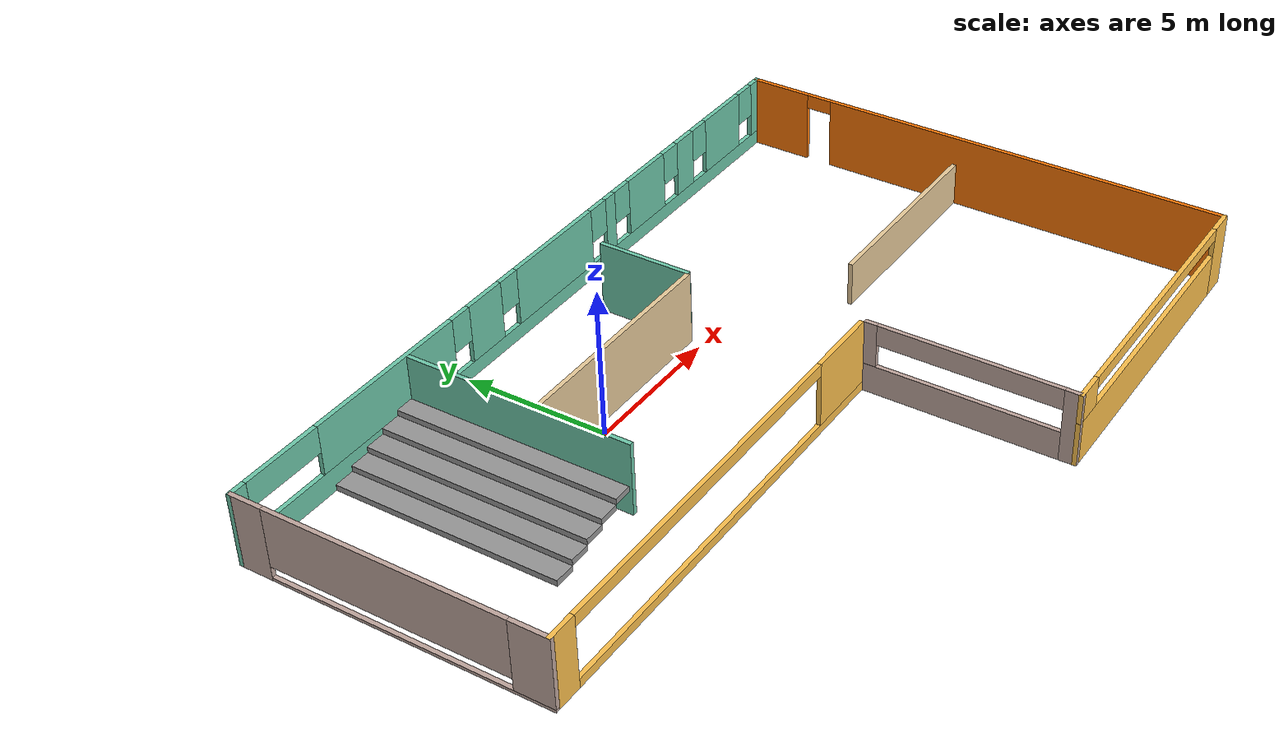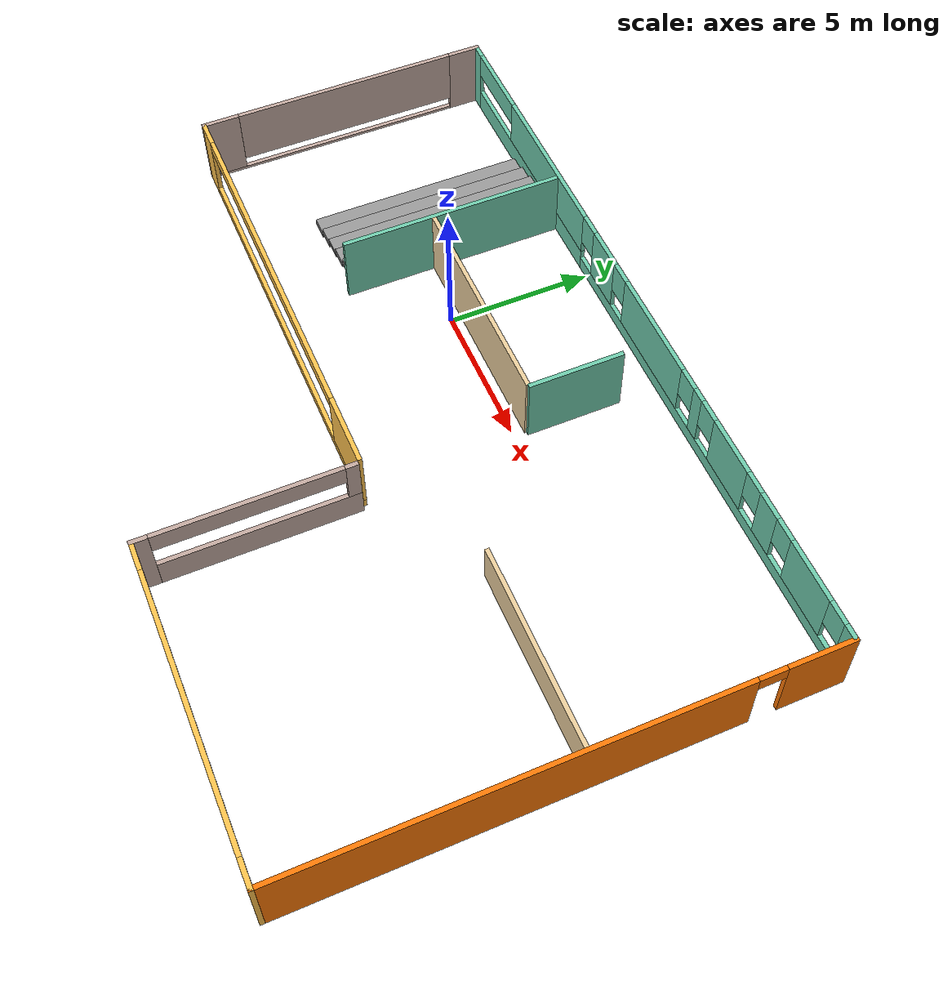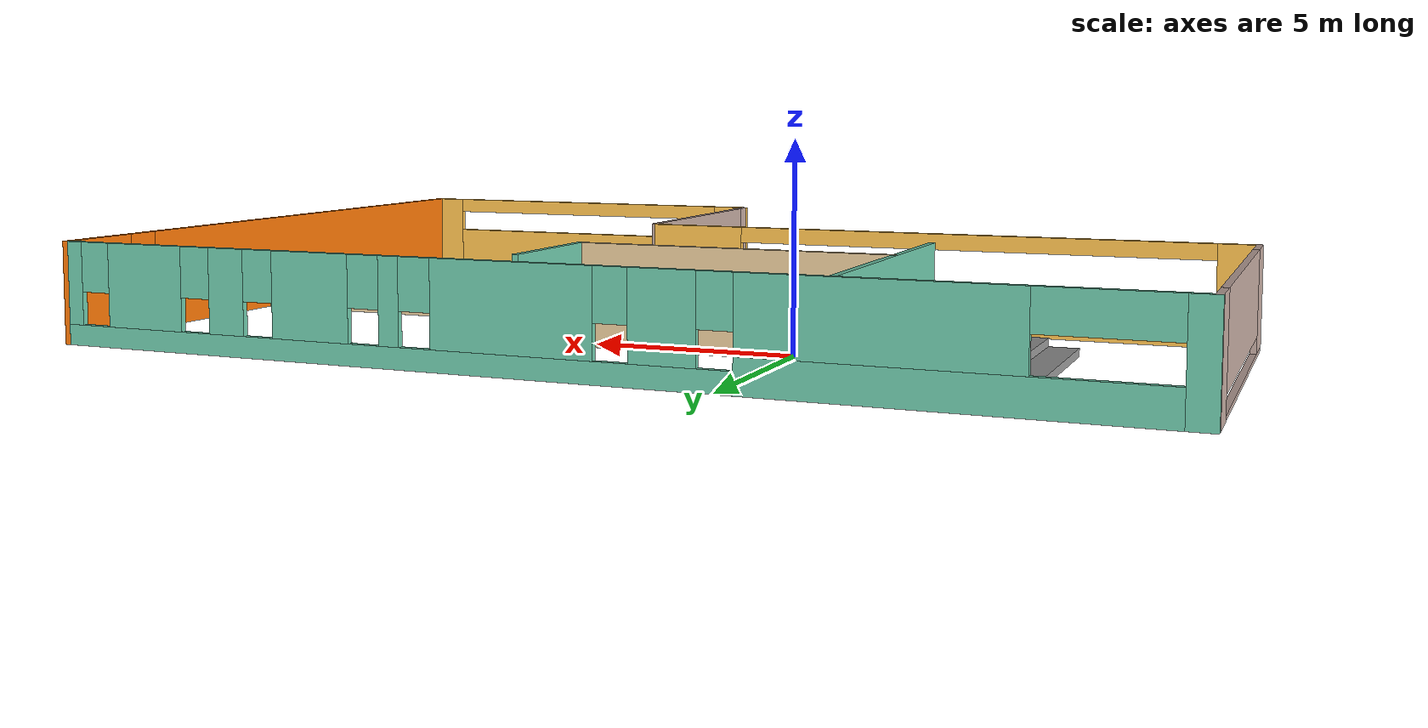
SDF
<?xml version='1.0'?>
<sdf version='1.6'>
  <model name='MyOffice'>
    <pose frame=''>3.50613 -3.59426 0 0 -0 0</pose>
    <link name='Stairs_1'>
      <visual name='Stairs_1_Visual_0'>
        <pose frame=''>-9.15396 4.81263 0.1 0 -0 1.5708</pose>
        <geometry>
          <box>
            <size>7.73533 0.7 0.2</size>
          </box>
        </geometry>
        <material>
          <script>
            <uri>file://media/materials/scripts/gazebo.material</uri>
            <name>Gazebo/Grey</name>
          </script>
          <ambient>1 1 1 1</ambient>
        </material>
        <meta>
          <layer>0</layer>
        </meta>
      </visual>
      <collision name='Stairs_1_Collision_0'>
        <geometry>
          <box>
            <size>7.73533 0.7 0.2</size>
          </box>
        </geometry>
        <pose frame=''>-9.15396 4.81263 0.1 0 -0 1.5708</pose>
      </collision>
      <visual name='Stairs_1_Visual_1'>
        <pose frame=''>-8.45396 4.81263 0.3 0 -0 1.5708</pose>
        <geometry>
          <box>
            <size>7.73533 0.7 0.2</size>
          </box>
        </geometry>
        <material>
          <script>
            <uri>file://media/materials/scripts/gazebo.material</uri>
            <name>Gazebo/Grey</name>
          </script>
          <ambient>1 1 1 1</ambient>
        </material>
        <meta>
          <layer>0</layer>
        </meta>
      </visual>
      <collision name='Stairs_1_Collision_1'>
        <geometry>
          <box>
            <size>7.73533 0.7 0.2</size>
          </box>
        </geometry>
        <pose frame=''>-8.45396 4.81263 0.3 0 -0 1.5708</pose>
      </collision>
      <visual name='Stairs_1_Visual_2'>
        <pose frame=''>-7.75396 4.81263 0.5 0 -0 1.5708</pose>
        <geometry>
          <box>
            <size>7.73533 0.7 0.2</size>
          </box>
        </geometry>
        <material>
          <script>
            <uri>file://media/materials/scripts/gazebo.material</uri>
            <name>Gazebo/Grey</name>
          </script>
          <ambient>1 1 1 1</ambient>
        </material>
        <meta>
          <layer>0</layer>
        </meta>
      </visual>
      <collision name='Stairs_1_Collision_2'>
        <geometry>
          <box>
            <size>7.73533 0.7 0.2</size>
          </box>
        </geometry>
        <pose frame=''>-7.75396 4.81263 0.5 0 -0 1.5708</pose>
      </collision>
      <visual name='Stairs_1_Visual_3'>
        <pose frame=''>-7.05396 4.81263 0.7 0 -0 1.5708</pose>
        <geometry>
          <box>
            <size>7.73533 0.7 0.2</size>
          </box>
        </geometry>
        <material>
          <script>
            <uri>file://media/materials/scripts/gazebo.material</uri>
            <name>Gazebo/Grey</name>
          </script>
          <ambient>1 1 1 1</ambient>
        </material>
        <meta>
          <layer>0</layer>
        </meta>
      </visual>
      <collision name='Stairs_1_Collision_3'>
        <geometry>
          <box>
            <size>7.73533 0.7 0.2</size>
          </box>
        </geometry>
        <pose frame=''>-7.05396 4.81263 0.7 0 -0 1.5708</pose>
      </collision>
      <visual name='Stairs_1_Visual_4'>
        <pose frame=''>-6.35396 4.81263 0.9 0 -0 1.5708</pose>
        <geometry>
          <box>
            <size>7.73533 0.7 0.2</size>
          </box>
        </geometry>
        <material>
          <script>
            <uri>file://media/materials/scripts/gazebo.material</uri>
            <name>Gazebo/Grey</name>
          </script>
          <ambient>1 1 1 1</ambient>
        </material>
        <meta>
          <layer>0</layer>
        </meta>
      </visual>
      <collision name='Stairs_1_Collision_4'>
        <geometry>
          <box>
            <size>7.73533 0.7 0.2</size>
          </box>
        </geometry>
        <pose frame=''>-6.35396 4.81263 0.9 0 -0 1.5708</pose>
      </collision>
    </link>
    <link name='Wall_1'>
      <pose frame=''>-13.175 3.5 0 0 0 -1.5708</pose>
      <visual name='Wall_1_Visual_0'>
        <pose frame=''>-4.66054 0 1.25 0 -0 0</pose>
        <geometry>
          <box>
            <size>1.17891 0.15 2.5</size>
          </box>
        </geometry>
        <material>
          <script>
            <uri>file://media/materials/scripts/gazebo.material</uri>
            <name>Gazebo/Grey</name>
          </script>
          <ambient>0.760784 0.662745 0.627451 1</ambient>
        </material>
        <meta>
          <layer>0</layer>
        </meta>
      </visual>
      <collision name='Wall_1_Collision_0'>
        <geometry>
          <box>
            <size>1.17891 0.15 2.5</size>
          </box>
        </geometry>
        <pose frame=''>-4.66054 0 1.25 0 -0 0</pose>
      </collision>
      <visual name='Wall_1_Visual_1'>
        <pose frame=''>0.589456 0 0.05 0 -0 0</pose>
        <geometry>
          <box>
            <size>9.32109 0.15 0.1</size>
          </box>
        </geometry>
        <material>
          <script>
            <uri>file://media/materials/scripts/gazebo.material</uri>
            <name>Gazebo/Grey</name>
          </script>
          <ambient>0.760784 0.662745 0.627451 1</ambient>
        </material>
        <meta>
          <layer>0</layer>
        </meta>
      </visual>
      <collision name='Wall_1_Collision_1'>
        <geometry>
          <box>
            <size>9.32109 0.15 0.1</size>
          </box>
        </geometry>
        <pose frame=''>0.589456 0 0.05 0 -0 0</pose>
      </collision>
      <visual name='Wall_1_Visual_2'>
        <pose frame=''>4.58946 0 1.3 0 -0 0</pose>
        <geometry>
          <box>
            <size>1.32109 0.15 2.4</size>
          </box>
        </geometry>
        <material>
          <script>
            <uri>file://media/materials/scripts/gazebo.material</uri>
            <name>Gazebo/Grey</name>
          </script>
          <ambient>0.760784 0.662745 0.627451 1</ambient>
        </material>
        <meta>
          <layer>0</layer>
        </meta>
      </visual>
      <collision name='Wall_1_Collision_2'>
        <geometry>
          <box>
            <size>1.32109 0.15 2.4</size>
          </box>
        </geometry>
        <pose frame=''>4.58946 0 1.3 0 -0 0</pose>
      </collision>
      <visual name='Wall_1_Visual_3'>
        <pose frame=''>-0.071087 0 1.5 0 -0 0</pose>
        <geometry>
          <box>
            <size>8 0.15 2</size>
          </box>
        </geometry>
        <material>
          <script>
            <uri>file://media/materials/scripts/gazebo.material</uri>
            <name>Gazebo/Grey</name>
          </script>
          <ambient>0.760784 0.662745 0.627451 1</ambient>
        </material>
        <meta>
          <layer>0</layer>
        </meta>
      </visual>
      <collision name='Wall_1_Collision_3'>
        <geometry>
          <box>
            <size>8 0.15 2</size>
          </box>
        </geometry>
        <pose frame=''>-0.071087 0 1.5 0 -0 0</pose>
      </collision>
    </link>
    <link name='Wall_11'>
      <collision name='Wall_11_Collision'>
        <geometry>
          <box>
            <size>7.75 0.15 2.5</size>
          </box>
        </geometry>
        <pose frame=''>0 0 1.25 0 -0 0</pose>
      </collision>
      <visual name='Wall_11_Visual'>
        <pose frame=''>0 0 1.25 0 -0 0</pose>
        <geometry>
          <box>
            <size>7.75 0.15 2.5</size>
          </box>
        </geometry>
        <material>
          <script>
            <uri>file://media/materials/scripts/gazebo.material</uri>
            <name>Gazebo/Grey</name>
          </script>
          <ambient>0.921569 0.807843 0.615686 1</ambient>
        </material>
        <meta>
          <layer>0</layer>
        </meta>
      </visual>
      <pose frame=''>-2.18392 4.03899 0 0 -0 0</pose>
    </link>
    <link name='Wall_13'>
      <collision name='Wall_13_Collision'>
        <geometry>
          <box>
            <size>7.25 0.15 1.5</size>
          </box>
        </geometry>
        <pose frame=''>0 0 0.75 0 -0 0</pose>
      </collision>
      <visual name='Wall_13_Visual'>
        <pose frame=''>0 0 0.75 0 -0 0</pose>
        <geometry>
          <box>
            <size>7.25 0.15 1.5</size>
          </box>
        </geometry>
        <material>
          <script>
            <uri>file://media/materials/scripts/gazebo.material</uri>
            <name>Gazebo/Grey</name>
          </script>
          <ambient>0.921569 0.807843 0.615686 1</ambient>
        </material>
        <meta>
          <layer>0</layer>
        </meta>
      </visual>
      <pose frame=''>9.60987 0.795259 0 0 -0 3.14159</pose>
    </link>
    <link name='Wall_15'>
      <collision name='Wall_15_Collision'>
        <geometry>
          <box>
            <size>7.75 0.15 2.5</size>
          </box>
        </geometry>
        <pose frame=''>0 0 1.25 0 -0 0</pose>
      </collision>
      <visual name='Wall_15_Visual'>
        <pose frame=''>0 0 1.25 0 -0 0</pose>
        <geometry>
          <box>
            <size>7.75 0.15 2.5</size>
          </box>
        </geometry>
        <material>
          <script>
            <uri>file://media/materials/scripts/gazebo.material</uri>
            <name>Gazebo/Grey</name>
          </script>
          <ambient>0.435294 0.796078 0.67451 1</ambient>
        </material>
        <meta>
          <layer>0</layer>
        </meta>
      </visual>
      <pose frame=''>-5.9943 4.72008 0 0 0 -1.5708</pose>
    </link>
    <link name='Wall_17'>
      <collision name='Wall_17_Collision'>
        <geometry>
          <box>
            <size>3.25 0.15 2.5</size>
          </box>
        </geometry>
        <pose frame=''>0 0 1.25 0 -0 0</pose>
      </collision>
      <visual name='Wall_17_Visual'>
        <pose frame=''>0 0 1.25 0 -0 0</pose>
        <geometry>
          <box>
            <size>3.25 0.15 2.5</size>
          </box>
        </geometry>
        <material>
          <script>
            <uri>file://media/materials/scripts/gazebo.material</uri>
            <name>Gazebo/Grey</name>
          </script>
          <ambient>0.435294 0.796078 0.67451 1</ambient>
        </material>
        <meta>
          <layer>0</layer>
        </meta>
      </visual>
      <pose frame=''>1.73138 5.6554 0 0 -0 1.5708</pose>
    </link>
    <link name='Wall_2'>
      <pose frame=''>-5.5 -1.675 0 0 -0 0</pose>
      <visual name='Wall_2_Visual_0'>
        <pose frame=''>-7.24406 0 1.25 0 -0 0</pose>
        <geometry>
          <box>
            <size>1.01187 0.15 2.5</size>
          </box>
        </geometry>
        <material>
          <script>
            <uri>file://media/materials/scripts/gazebo.material</uri>
            <name>Gazebo/Grey</name>
          </script>
          <ambient>1 0.764706 0.305882 1</ambient>
        </material>
        <meta>
          <layer>0</layer>
        </meta>
      </visual>
      <collision name='Wall_2_Collision_0'>
        <geometry>
          <box>
            <size>1.01187 0.15 2.5</size>
          </box>
        </geometry>
        <pose frame=''>-7.24406 0 1.25 0 -0 0</pose>
      </collision>
      <visual name='Wall_2_Visual_1'>
        <pose frame=''>0.505935 0 0.15 0 -0 0</pose>
        <geometry>
          <box>
            <size>14.4881 0.15 0.3</size>
          </box>
        </geometry>
        <material>
          <script>
            <uri>file://media/materials/scripts/gazebo.material</uri>
            <name>Gazebo/Grey</name>
          </script>
          <ambient>1 0.764706 0.305882 1</ambient>
        </material>
        <meta>
          <layer>0</layer>
        </meta>
      </visual>
      <collision name='Wall_2_Collision_1'>
        <geometry>
          <box>
            <size>14.4881 0.15 0.3</size>
          </box>
        </geometry>
        <pose frame=''>0.505935 0 0.15 0 -0 0</pose>
      </collision>
      <visual name='Wall_2_Visual_2'>
        <pose frame=''>6.50594 0 1.4 0 -0 0</pose>
        <geometry>
          <box>
            <size>2.48813 0.15 2.2</size>
          </box>
        </geometry>
        <material>
          <script>
            <uri>file://media/materials/scripts/gazebo.material</uri>
            <name>Gazebo/Grey</name>
          </script>
          <ambient>1 0.764706 0.305882 1</ambient>
        </material>
        <meta>
          <layer>0</layer>
        </meta>
      </visual>
      <collision name='Wall_2_Collision_2'>
        <geometry>
          <box>
            <size>2.48813 0.15 2.2</size>
          </box>
        </geometry>
        <pose frame=''>6.50594 0 1.4 0 -0 0</pose>
      </collision>
      <visual name='Wall_2_Visual_3'>
        <pose frame=''>-0.738131 0 2.3 0 -0 0</pose>
        <geometry>
          <box>
            <size>12 0.15 0.4</size>
          </box>
        </geometry>
        <material>
          <script>
            <uri>file://media/materials/scripts/gazebo.material</uri>
            <name>Gazebo/Grey</name>
          </script>
          <ambient>1 0.764706 0.305882 1</ambient>
        </material>
        <meta>
          <layer>0</layer>
        </meta>
      </visual>
      <collision name='Wall_2_Collision_3'>
        <geometry>
          <box>
            <size>12 0.15 0.4</size>
          </box>
        </geometry>
        <pose frame=''>-0.738131 0 2.3 0 -0 0</pose>
      </collision>
    </link>
    <link name='Wall_4'>
      <pose frame=''>0 8.675 0 0 -0 0</pose>
      <visual name='Wall_4_Visual_0'>
        <pose frame=''>-12.9493 0 1.25 0 -0 0</pose>
        <geometry>
          <box>
            <size>0.601453 0.15 2.5</size>
          </box>
        </geometry>
        <material>
          <script>
            <uri>file://media/materials/scripts/gazebo.material</uri>
            <name>Gazebo/Grey</name>
          </script>
          <ambient>0.435294 0.796078 0.67451 1</ambient>
        </material>
        <meta>
          <layer>0</layer>
        </meta>
      </visual>
      <collision name='Wall_4_Collision_0'>
        <geometry>
          <box>
            <size>0.601453 0.15 2.5</size>
          </box>
        </geometry>
        <pose frame=''>-12.9493 0 1.25 0 -0 0</pose>
      </collision>
      <visual name='Wall_4_Visual_1'>
        <pose frame=''>-8.30819 0 0.4 0 -0 0</pose>
        <geometry>
          <box>
            <size>8.68071 0.15 0.8</size>
          </box>
        </geometry>
        <material>
          <script>
            <uri>file://media/materials/scripts/gazebo.material</uri>
            <name>Gazebo/Grey</name>
          </script>
          <ambient>0.435294 0.796078 0.67451 1</ambient>
        </material>
        <meta>
          <layer>0</layer>
        </meta>
      </visual>
      <collision name='Wall_4_Collision_1'>
        <geometry>
          <box>
            <size>8.68071 0.15 0.8</size>
          </box>
        </geometry>
        <pose frame=''>-8.30819 0 0.4 0 -0 0</pose>
      </collision>
      <visual name='Wall_4_Visual_2'>
        <pose frame=''>4.64108 0 0.25 0 -0 0</pose>
        <geometry>
          <box>
            <size>17.2178 0.15 0.5</size>
          </box>
        </geometry>
        <material>
          <script>
            <uri>file://media/materials/scripts/gazebo.material</uri>
            <name>Gazebo/Grey</name>
          </script>
          <ambient>0.435294 0.796078 0.67451 1</ambient>
        </material>
        <meta>
          <layer>0</layer>
        </meta>
      </visual>
      <collision name='Wall_4_Collision_2'>
        <geometry>
          <box>
            <size>17.2178 0.15 0.5</size>
          </box>
        </geometry>
        <pose frame=''>4.64108 0 0.25 0 -0 0</pose>
      </collision>
      <visual name='Wall_4_Visual_3'>
        <pose frame=''>-2.41009 0 1.5 0 -0 0</pose>
        <geometry>
          <box>
            <size>1.51549 0.15 2</size>
          </box>
        </geometry>
        <material>
          <script>
            <uri>file://media/materials/scripts/gazebo.material</uri>
            <name>Gazebo/Grey</name>
          </script>
          <ambient>0.435294 0.796078 0.67451 1</ambient>
        </material>
        <meta>
          <layer>0</layer>
        </meta>
      </visual>
      <collision name='Wall_4_Collision_3'>
        <geometry>
          <box>
            <size>1.51549 0.15 2</size>
          </box>
        </geometry>
        <pose frame=''>-2.41009 0 1.5 0 -0 0</pose>
      </collision>
      <visual name='Wall_4_Visual_4'>
        <pose frame=''>1.09786 0 1.5 0 -0 0</pose>
        <geometry>
          <box>
            <size>3.90042 0.15 2</size>
          </box>
        </geometry>
        <material>
          <script>
            <uri>file://media/materials/scripts/gazebo.material</uri>
            <name>Gazebo/Grey</name>
          </script>
          <ambient>0.435294 0.796078 0.67451 1</ambient>
        </material>
        <meta>
          <layer>0</layer>
        </meta>
      </visual>
      <collision name='Wall_4_Collision_4'>
        <geometry>
          <box>
            <size>3.90042 0.15 2</size>
          </box>
        </geometry>
        <pose frame=''>1.09786 0 1.5 0 -0 0</pose>
      </collision>
      <visual name='Wall_4_Visual_5'>
        <pose frame=''>4.10318 0 1.5 0 -0 0</pose>
        <geometry>
          <box>
            <size>0.510201 0.15 2</size>
          </box>
        </geometry>
        <material>
          <script>
            <uri>file://media/materials/scripts/gazebo.material</uri>
            <name>Gazebo/Grey</name>
          </script>
          <ambient>0.435294 0.796078 0.67451 1</ambient>
        </material>
        <meta>
          <layer>0</layer>
        </meta>
      </visual>
      <collision name='Wall_4_Collision_5'>
        <geometry>
          <box>
            <size>0.510201 0.15 2</size>
          </box>
        </geometry>
        <pose frame=''>4.10318 0 1.5 0 -0 0</pose>
      </collision>
      <visual name='Wall_4_Visual_6'>
        <pose frame=''>6.17414 0 1.5 0 -0 0</pose>
        <geometry>
          <box>
            <size>2.03172 0.15 2</size>
          </box>
        </geometry>
        <material>
          <script>
            <uri>file://media/materials/scripts/gazebo.material</uri>
            <name>Gazebo/Grey</name>
          </script>
          <ambient>0.435294 0.796078 0.67451 1</ambient>
        </material>
        <meta>
          <layer>0</layer>
        </meta>
      </visual>
      <collision name='Wall_4_Collision_6'>
        <geometry>
          <box>
            <size>2.03172 0.15 2</size>
          </box>
        </geometry>
        <pose frame=''>6.17414 0 1.5 0 -0 0</pose>
      </collision>
      <visual name='Wall_4_Visual_7'>
        <pose frame=''>8.46963 0 1.5 0 -0 0</pose>
        <geometry>
          <box>
            <size>0.959263 0.15 2</size>
          </box>
        </geometry>
        <material>
          <script>
            <uri>file://media/materials/scripts/gazebo.material</uri>
            <name>Gazebo/Grey</name>
          </script>
          <ambient>0.435294 0.796078 0.67451 1</ambient>
        </material>
        <meta>
          <layer>0</layer>
        </meta>
      </visual>
      <collision name='Wall_4_Collision_7'>
        <geometry>
          <box>
            <size>0.959263 0.15 2</size>
          </box>
        </geometry>
        <pose frame=''>8.46963 0 1.5 0 -0 0</pose>
      </collision>
      <visual name='Wall_4_Visual_8'>
        <pose frame=''>10.8153 0 1.5 0 -0 0</pose>
        <geometry>
          <box>
            <size>2.1321 0.15 2</size>
          </box>
        </geometry>
        <material>
          <script>
            <uri>file://media/materials/scripts/gazebo.material</uri>
            <name>Gazebo/Grey</name>
          </script>
          <ambient>0.435294 0.796078 0.67451 1</ambient>
        </material>
        <meta>
          <layer>0</layer>
        </meta>
      </visual>
      <collision name='Wall_4_Collision_8'>
        <geometry>
          <box>
            <size>2.1321 0.15 2</size>
          </box>
        </geometry>
        <pose frame=''>10.8153 0 1.5 0 -0 0</pose>
      </collision>
      <visual name='Wall_4_Visual_9'>
        <pose frame=''>12.9657 0 1.5 0 -0 0</pose>
        <geometry>
          <box>
            <size>0.568637 0.15 2</size>
          </box>
        </geometry>
        <material>
          <script>
            <uri>file://media/materials/scripts/gazebo.material</uri>
            <name>Gazebo/Grey</name>
          </script>
          <ambient>0.435294 0.796078 0.67451 1</ambient>
        </material>
        <meta>
          <layer>0</layer>
        </meta>
      </visual>
      <collision name='Wall_4_Collision_9'>
        <geometry>
          <box>
            <size>0.568637 0.15 2</size>
          </box>
        </geometry>
        <pose frame=''>12.9657 0 1.5 0 -0 0</pose>
      </collision>
      <visual name='Wall_4_Visual_10'>
        <pose frame=''>-6.90819 0 1.65 0 -0 0</pose>
        <geometry>
          <box>
            <size>5.88071 0.15 1.7</size>
          </box>
        </geometry>
        <material>
          <script>
            <uri>file://media/materials/scripts/gazebo.material</uri>
            <name>Gazebo/Grey</name>
          </script>
          <ambient>0.435294 0.796078 0.67451 1</ambient>
        </material>
        <meta>
          <layer>0</layer>
        </meta>
      </visual>
      <collision name='Wall_4_Collision_10'>
        <geometry>
          <box>
            <size>5.88071 0.15 1.7</size>
          </box>
        </geometry>
        <pose frame=''>-6.90819 0 1.65 0 -0 0</pose>
      </collision>
      <visual name='Wall_4_Visual_11'>
        <pose frame=''>-1.25235 0 1.9 0 -0 0</pose>
        <geometry>
          <box>
            <size>0.8 0.15 1.2</size>
          </box>
        </geometry>
        <material>
          <script>
            <uri>file://media/materials/scripts/gazebo.material</uri>
            <name>Gazebo/Grey</name>
          </script>
          <ambient>0.435294 0.796078 0.67451 1</ambient>
        </material>
        <meta>
          <layer>0</layer>
        </meta>
      </visual>
      <collision name='Wall_4_Collision_11'>
        <geometry>
          <box>
            <size>0.8 0.15 1.2</size>
          </box>
        </geometry>
        <pose frame=''>-1.25235 0 1.9 0 -0 0</pose>
      </collision>
      <visual name='Wall_4_Visual_12'>
        <pose frame=''>3.44807 0 1.9 0 -0 0</pose>
        <geometry>
          <box>
            <size>0.8 0.15 1.2</size>
          </box>
        </geometry>
        <material>
          <script>
            <uri>file://media/materials/scripts/gazebo.material</uri>
            <name>Gazebo/Grey</name>
          </script>
          <ambient>0.435294 0.796078 0.67451 1</ambient>
        </material>
        <meta>
          <layer>0</layer>
        </meta>
      </visual>
      <collision name='Wall_4_Collision_12'>
        <geometry>
          <box>
            <size>0.8 0.15 1.2</size>
          </box>
        </geometry>
        <pose frame=''>3.44807 0 1.9 0 -0 0</pose>
      </collision>
      <visual name='Wall_4_Visual_13'>
        <pose frame=''>4.75828 0 1.9 0 -0 0</pose>
        <geometry>
          <box>
            <size>0.8 0.15 1.2</size>
          </box>
        </geometry>
        <material>
          <script>
            <uri>file://media/materials/scripts/gazebo.material</uri>
            <name>Gazebo/Grey</name>
          </script>
          <ambient>0.435294 0.796078 0.67451 1</ambient>
        </material>
        <meta>
          <layer>0</layer>
        </meta>
      </visual>
      <collision name='Wall_4_Collision_13'>
        <geometry>
          <box>
            <size>0.8 0.15 1.2</size>
          </box>
        </geometry>
        <pose frame=''>4.75828 0 1.9 0 -0 0</pose>
      </collision>
      <visual name='Wall_4_Visual_14'>
        <pose frame=''>7.59 0 1.9 0 -0 0</pose>
        <geometry>
          <box>
            <size>0.8 0.15 1.2</size>
          </box>
        </geometry>
        <material>
          <script>
            <uri>file://media/materials/scripts/gazebo.material</uri>
            <name>Gazebo/Grey</name>
          </script>
          <ambient>0.435294 0.796078 0.67451 1</ambient>
        </material>
        <meta>
          <layer>0</layer>
        </meta>
      </visual>
      <collision name='Wall_4_Collision_14'>
        <geometry>
          <box>
            <size>0.8 0.15 1.2</size>
          </box>
        </geometry>
        <pose frame=''>7.59 0 1.9 0 -0 0</pose>
      </collision>
      <visual name='Wall_4_Visual_15'>
        <pose frame=''>9.34926 0 1.9 0 -0 0</pose>
        <geometry>
          <box>
            <size>0.8 0.15 1.2</size>
          </box>
        </geometry>
        <material>
          <script>
            <uri>file://media/materials/scripts/gazebo.material</uri>
            <name>Gazebo/Grey</name>
          </script>
          <ambient>0.435294 0.796078 0.67451 1</ambient>
        </material>
        <meta>
          <layer>0</layer>
        </meta>
      </visual>
      <collision name='Wall_4_Collision_15'>
        <geometry>
          <box>
            <size>0.8 0.15 1.2</size>
          </box>
        </geometry>
        <pose frame=''>9.34926 0 1.9 0 -0 0</pose>
      </collision>
      <visual name='Wall_4_Visual_16'>
        <pose frame=''>12.2814 0 1.9 0 -0 0</pose>
        <geometry>
          <box>
            <size>0.8 0.15 1.2</size>
          </box>
        </geometry>
        <material>
          <script>
            <uri>file://media/materials/scripts/gazebo.material</uri>
            <name>Gazebo/Grey</name>
          </script>
          <ambient>0.435294 0.796078 0.67451 1</ambient>
        </material>
        <meta>
          <layer>0</layer>
        </meta>
      </visual>
      <collision name='Wall_4_Collision_16'>
        <geometry>
          <box>
            <size>0.8 0.15 1.2</size>
          </box>
        </geometry>
        <pose frame=''>12.2814 0 1.9 0 -0 0</pose>
      </collision>
      <visual name='Wall_4_Visual_17'>
        <pose frame=''>-3.56784 0 1.9 0 -0 0</pose>
        <geometry>
          <box>
            <size>0.8 0.15 1.2</size>
          </box>
        </geometry>
        <material>
          <script>
            <uri>file://media/materials/scripts/gazebo.material</uri>
            <name>Gazebo/Grey</name>
          </script>
          <ambient>0.435294 0.796078 0.67451 1</ambient>
        </material>
        <meta>
          <layer>0</layer>
        </meta>
      </visual>
      <collision name='Wall_4_Collision_17'>
        <geometry>
          <box>
            <size>0.8 0.15 1.2</size>
          </box>
        </geometry>
        <pose frame=''>-3.56784 0 1.9 0 -0 0</pose>
      </collision>
      <visual name='Wall_4_Visual_18'>
        <pose frame=''>-11.2485 0 2.05 0 -0 0</pose>
        <geometry>
          <box>
            <size>2.8 0.15 0.9</size>
          </box>
        </geometry>
        <material>
          <script>
            <uri>file://media/materials/scripts/gazebo.material</uri>
            <name>Gazebo/Grey</name>
          </script>
          <ambient>0.435294 0.796078 0.67451 1</ambient>
        </material>
        <meta>
          <layer>0</layer>
        </meta>
      </visual>
      <collision name='Wall_4_Collision_18'>
        <geometry>
          <box>
            <size>2.8 0.15 0.9</size>
          </box>
        </geometry>
        <pose frame=''>-11.2485 0 2.05 0 -0 0</pose>
      </collision>
    </link>
    <link name='Wall_5'>
      <pose frame=''>13.175 0 0 0 0 -1.5708</pose>
      <visual name='Wall_5_Visual_0'>
        <pose frame=''>-7.64597 0 1.25 0 -0 0</pose>
        <geometry>
          <box>
            <size>2.20807 0.15 2.5</size>
          </box>
        </geometry>
        <material>
          <script>
            <uri>file://media/materials/scripts/gazebo.material</uri>
            <name>Gazebo/Grey</name>
          </script>
          <ambient>0.996078 0.47451 0.0196078 1</ambient>
        </material>
        <meta>
          <layer>0</layer>
        </meta>
      </visual>
      <collision name='Wall_5_Collision_0'>
        <geometry>
          <box>
            <size>2.20807 0.15 2.5</size>
          </box>
        </geometry>
        <pose frame=''>-7.64597 0 1.25 0 -0 0</pose>
      </collision>
      <visual name='Wall_5_Visual_1'>
        <pose frame=''>1.55403 0 1.25 0 -0 0</pose>
        <geometry>
          <box>
            <size>14.3919 0.15 2.5</size>
          </box>
        </geometry>
        <material>
          <script>
            <uri>file://media/materials/scripts/gazebo.material</uri>
            <name>Gazebo/Grey</name>
          </script>
          <ambient>0.996078 0.47451 0.0196078 1</ambient>
        </material>
        <meta>
          <layer>0</layer>
        </meta>
      </visual>
      <collision name='Wall_5_Collision_1'>
        <geometry>
          <box>
            <size>14.3919 0.15 2.5</size>
          </box>
        </geometry>
        <pose frame=''>1.55403 0 1.25 0 -0 0</pose>
      </collision>
      <visual name='Wall_5_Visual_2'>
        <pose frame=''>-6.09193 0 2.25 0 -0 0</pose>
        <geometry>
          <box>
            <size>0.9 0.15 0.5</size>
          </box>
        </geometry>
        <material>
          <script>
            <uri>file://media/materials/scripts/gazebo.material</uri>
            <name>Gazebo/Grey</name>
          </script>
          <ambient>0.996078 0.47451 0.0196078 1</ambient>
        </material>
        <meta>
          <layer>0</layer>
        </meta>
      </visual>
      <collision name='Wall_5_Collision_2'>
        <geometry>
          <box>
            <size>0.9 0.15 0.5</size>
          </box>
        </geometry>
        <pose frame=''>-6.09193 0 2.25 0 -0 0</pose>
      </collision>
    </link>
    <link name='Wall_7'>
      <pose frame=''>7.75 -8.675 0 0 -0 3.14159</pose>
      <visual name='Wall_7_Visual_0'>
        <pose frame=''>-5.02514 0 1.25 0 -0 0</pose>
        <geometry>
          <box>
            <size>0.949727 0.15 2.5</size>
          </box>
        </geometry>
        <material>
          <script>
            <uri>file://media/materials/scripts/gazebo.material</uri>
            <name>Gazebo/Grey</name>
          </script>
          <ambient>1 0.764706 0.305882 1</ambient>
        </material>
        <meta>
          <layer>0</layer>
        </meta>
      </visual>
      <collision name='Wall_7_Collision_0'>
        <geometry>
          <box>
            <size>0.949727 0.15 2.5</size>
          </box>
        </geometry>
        <pose frame=''>-5.02514 0 1.25 0 -0 0</pose>
      </collision>
      <visual name='Wall_7_Visual_1'>
        <pose frame=''>0.474864 0 0.75 0 -0 0</pose>
        <geometry>
          <box>
            <size>10.0503 0.15 1.5</size>
          </box>
        </geometry>
        <material>
          <script>
            <uri>file://media/materials/scripts/gazebo.material</uri>
            <name>Gazebo/Grey</name>
          </script>
          <ambient>1 0.764706 0.305882 1</ambient>
        </material>
        <meta>
          <layer>0</layer>
        </meta>
      </visual>
      <collision name='Wall_7_Collision_1'>
        <geometry>
          <box>
            <size>10.0503 0.15 1.5</size>
          </box>
        </geometry>
        <pose frame=''>0.474864 0 0.75 0 -0 0</pose>
      </collision>
      <visual name='Wall_7_Visual_2'>
        <pose frame=''>4.97486 0 2 0 -0 0</pose>
        <geometry>
          <box>
            <size>1.05027 0.15 1</size>
          </box>
        </geometry>
        <material>
          <script>
            <uri>file://media/materials/scripts/gazebo.material</uri>
            <name>Gazebo/Grey</name>
          </script>
          <ambient>1 0.764706 0.305882 1</ambient>
        </material>
        <meta>
          <layer>0</layer>
        </meta>
      </visual>
      <collision name='Wall_7_Collision_2'>
        <geometry>
          <box>
            <size>1.05027 0.15 1</size>
          </box>
        </geometry>
        <pose frame=''>4.97486 0 2 0 -0 0</pose>
      </collision>
      <visual name='Wall_7_Visual_3'>
        <pose frame=''>-0.050273 0 2.3 0 -0 0</pose>
        <geometry>
          <box>
            <size>9 0.15 0.4</size>
          </box>
        </geometry>
        <material>
          <script>
            <uri>file://media/materials/scripts/gazebo.material</uri>
            <name>Gazebo/Grey</name>
          </script>
          <ambient>1 0.764706 0.305882 1</ambient>
        </material>
        <meta>
          <layer>0</layer>
        </meta>
      </visual>
      <collision name='Wall_7_Collision_3'>
        <geometry>
          <box>
            <size>9 0.15 0.4</size>
          </box>
        </geometry>
        <pose frame=''>-0.050273 0 2.3 0 -0 0</pose>
      </collision>
    </link>
    <link name='Wall_8'>
      <pose frame=''>2.325 -5.25 0 0 -0 1.5708</pose>
      <visual name='Wall_8_Visual_0'>
        <pose frame=''>-3.21189 0 1.25 0 -0 0</pose>
        <geometry>
          <box>
            <size>0.576225 0.15 2.5</size>
          </box>
        </geometry>
        <material>
          <script>
            <uri>file://media/materials/scripts/gazebo.material</uri>
            <name>Gazebo/Grey</name>
          </script>
          <ambient>0.760784 0.662745 0.627451 1</ambient>
        </material>
        <meta>
          <layer>0</layer>
        </meta>
      </visual>
      <collision name='Wall_8_Collision_0'>
        <geometry>
          <box>
            <size>0.576225 0.15 2.5</size>
          </box>
        </geometry>
        <pose frame=''>-3.21189 0 1.25 0 -0 0</pose>
      </collision>
      <visual name='Wall_8_Visual_1'>
        <pose frame=''>0.288113 0 0.5 0 -0 0</pose>
        <geometry>
          <box>
            <size>6.42378 0.15 1</size>
          </box>
        </geometry>
        <material>
          <script>
            <uri>file://media/materials/scripts/gazebo.material</uri>
            <name>Gazebo/Grey</name>
          </script>
          <ambient>0.760784 0.662745 0.627451 1</ambient>
        </material>
        <meta>
          <layer>0</layer>
        </meta>
      </visual>
      <collision name='Wall_8_Collision_1'>
        <geometry>
          <box>
            <size>6.42378 0.15 1</size>
          </box>
        </geometry>
        <pose frame=''>0.288113 0 0.5 0 -0 0</pose>
      </collision>
      <visual name='Wall_8_Visual_2'>
        <pose frame=''>3.28811 0 1.75 0 -0 0</pose>
        <geometry>
          <box>
            <size>0.423775 0.15 1.5</size>
          </box>
        </geometry>
        <material>
          <script>
            <uri>file://media/materials/scripts/gazebo.material</uri>
            <name>Gazebo/Grey</name>
          </script>
          <ambient>0.760784 0.662745 0.627451 1</ambient>
        </material>
        <meta>
          <layer>0</layer>
        </meta>
      </visual>
      <collision name='Wall_8_Collision_2'>
        <geometry>
          <box>
            <size>0.423775 0.15 1.5</size>
          </box>
        </geometry>
        <pose frame=''>3.28811 0 1.75 0 -0 0</pose>
      </collision>
      <visual name='Wall_8_Visual_3'>
        <pose frame=''>0.076225 0 2.15 0 -0 0</pose>
        <geometry>
          <box>
            <size>6 0.15 0.7</size>
          </box>
        </geometry>
        <material>
          <script>
            <uri>file://media/materials/scripts/gazebo.material</uri>
            <name>Gazebo/Grey</name>
          </script>
          <ambient>0.760784 0.662745 0.627451 1</ambient>
        </material>
        <meta>
          <layer>0</layer>
        </meta>
      </visual>
      <collision name='Wall_8_Collision_3'>
        <geometry>
          <box>
            <size>6 0.15 0.7</size>
          </box>
        </geometry>
        <pose frame=''>0.076225 0 2.15 0 -0 0</pose>
      </collision>
    </link>
    <static>1</static>
  </model>
</sdf>
